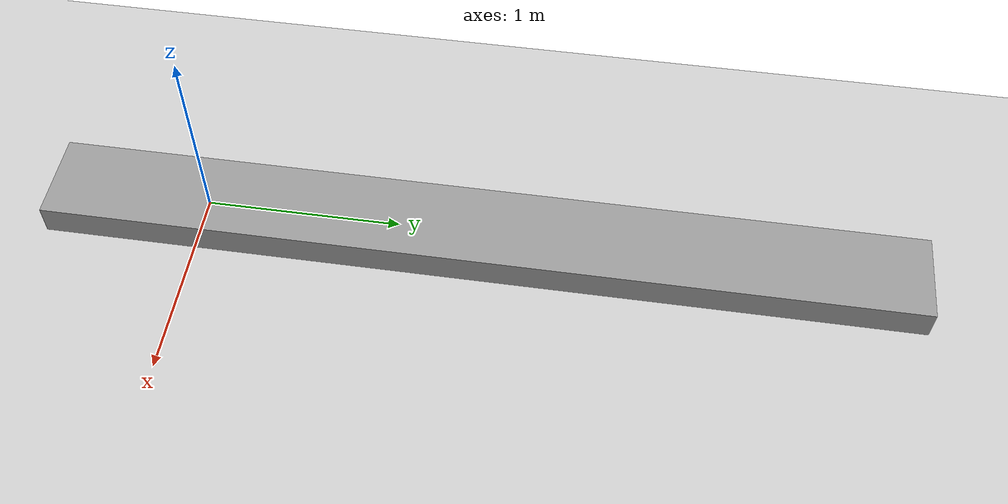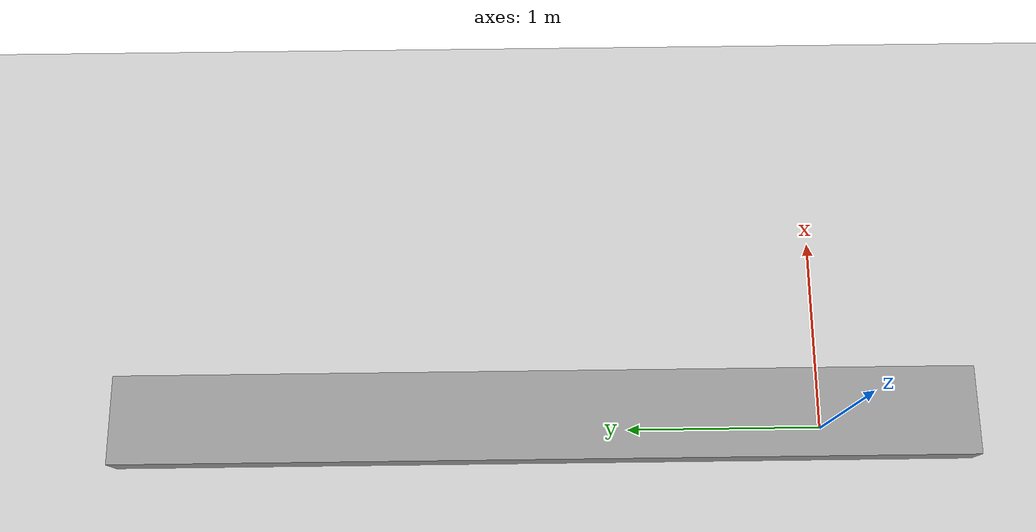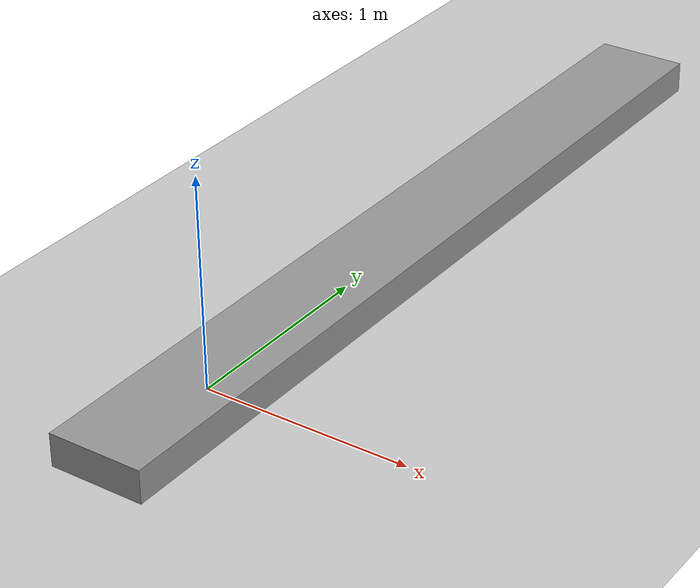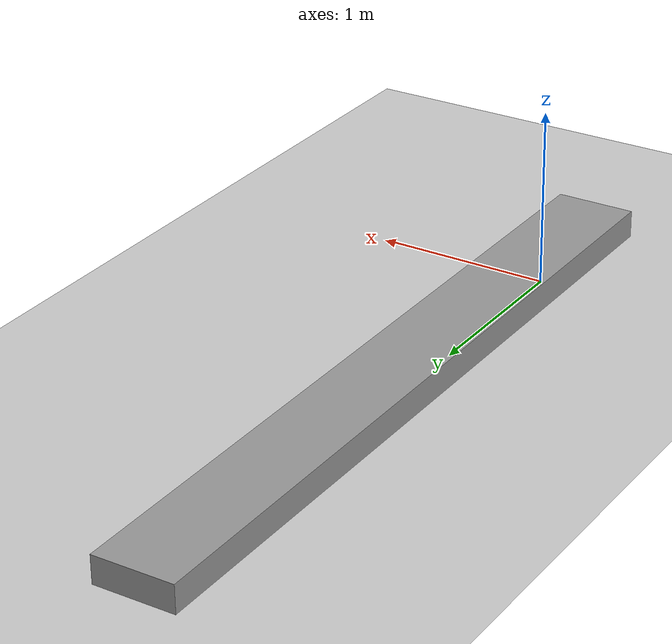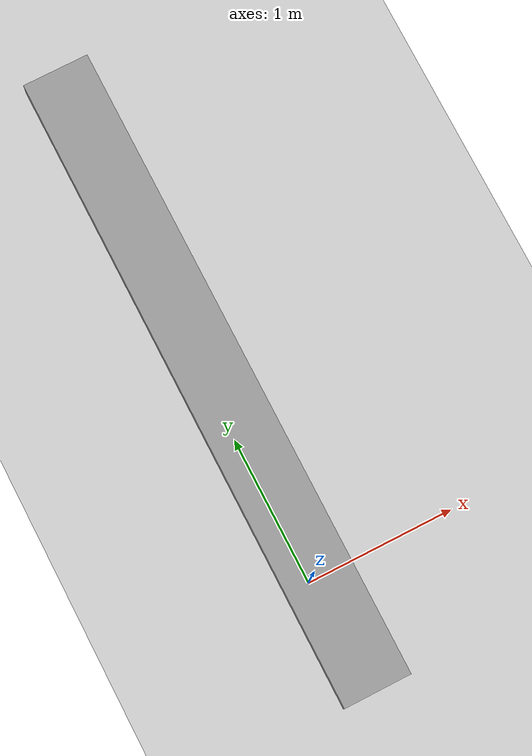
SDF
<sdf version="1.6">
 <world name="default">
  <light name="sun" type="directional">
   <pose>0 0 10 0 -0 0</pose>
   <diffuse>0.8 0.8 0.8 1</diffuse>
   <specular>0.1 0.1 0.1 1</specular>
   <attenuation>
    <range>1000</range>
    <constant>0.9</constant>
    <linear>0.01</linear>
    <quadratic>0.001</quadratic>
   </attenuation>
   <direction>-0.5 0.5 -1</direction>
  </light>
  <model name="ground_plane">
   <static>1</static>
   <link name="link">
    <collision name="collision">
     <geometry><plane><normal>0 0 1</normal><size>100 100</size></plane></geometry>
     <surface><friction><ode><mu>100</mu><mu2>50</mu2></ode></friction></surface>
    </collision>
    <visual name="visual">
     <cast_shadows>0</cast_shadows>
     <geometry><plane><normal>0 0 1</normal><size>100 100</size></plane></geometry>
     <material>
      <script><uri>file://media/materials/scripts/gazebo.material</uri><name>Gazebo/Grey</name></script>
     </material>
    </visual>
   </link>
  </model>
  <gravity>0 0 -9.8</gravity>
  <magnetic_field>6e-06 2.3e-05 -4.2e-05</magnetic_field>
  <atmosphere type="adiabatic"/>
  <physics name="default_physics" default="0" type="ode">
   <max_step_size>0.001</max_step_size>
   <real_time_factor>1</real_time_factor>
   <real_time_update_rate>1000</real_time_update_rate>
  </physics>
  <scene><ambient>0.4 0.4 0.4 1</ambient><background>0.7 0.7 0.7 1</background><shadows>1</shadows></scene>
  <spherical_coordinates>
   <surface_model>EARTH_WGS84</surface_model>
   <latitude_deg>0</latitude_deg>
   <longitude_deg>0</longitude_deg>
   <elevation>0</elevation>
   <heading_deg>0</heading_deg>
  </spherical_coordinates>
  <model name="unit_box_0">
   <static>1</static>
   <pose>0.061885 1.43222 0.076834 -0.000844 4e-06 -8e-06</pose>
   <link name="link">
    <inertial>
     <mass>1</mass>
     <inertia>
      <ixx>0.166667</ixx>
      <ixy>0</ixy>
      <ixz>0</ixz>
      <iyy>0.166667</iyy>
      <iyz>0</iyz>
      <izz>0.166667</izz>
     </inertia>
    </inertial>
    <collision name="collision"><geometry><box><size>0.454934 4.40943 0.157388</size></box></geometry></collision>
    <visual name="visual">
     <geometry><box><size>0.454934 4.40943 0.157388</size></box></geometry>
     <material>
      <script><name>Gazebo/Grey</name><uri>file://media/materials/scripts/gazebo.material</uri></script>
     </material>
    </visual>
   </link>
  </model>
  <light name="user_spot_light_0" type="spot">
   <pose>0.052357 -1.37 1 0 -0 0</pose>
   <diffuse>0.5 0.5 0.5 1</diffuse>
   <specular>0.1 0.1 0.1 1</specular>
   <direction>0 0 -1</direction>
   <attenuation>
    <range>20</range>
    <constant>0.5</constant>
    <linear>0.01</linear>
    <quadratic>0.001</quadratic>
   </attenuation>
   <cast_shadows>0</cast_shadows>
   <spot><inner_angle>0.6</inner_angle><outer_angle>1</outer_angle><falloff>1</falloff></spot>
  </light>
 </world>
</sdf>
